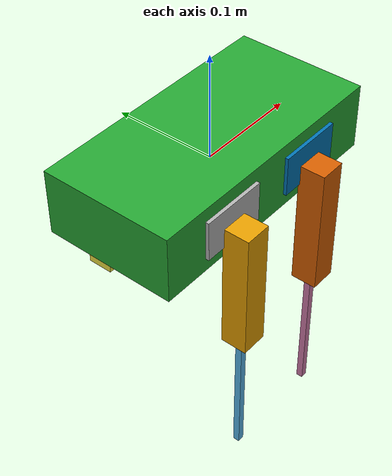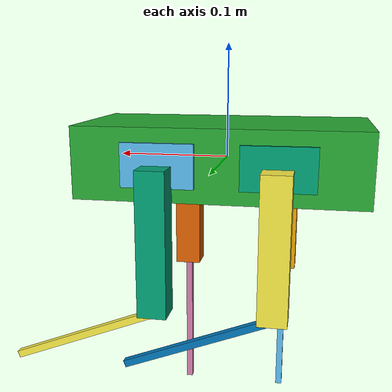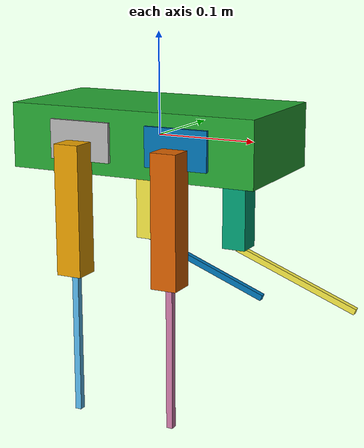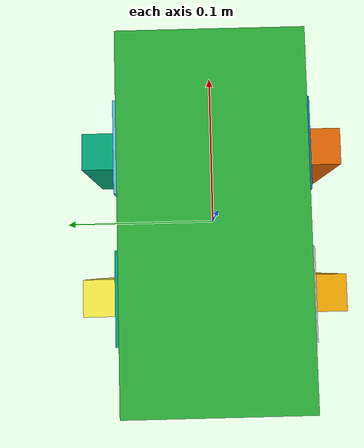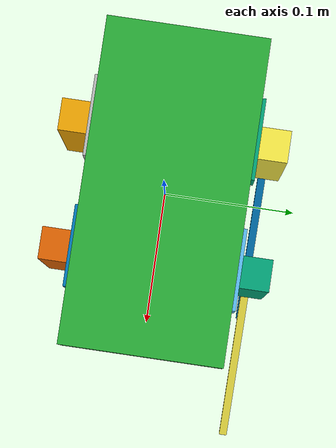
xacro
<?xml version="1.0" ?>
<!-- |    This document was autogenerated by xacro from /home/samee/ros2_ws/src/servo_controller/urdf/fixed_urdf2.urdf | -->
<!-- |    EDITING THIS FILE BY HAND IS NOT RECOMMENDED                                 | -->
<robot xmlns:xacro="http://www.ros.org/wiki/xacro"  name="robot">

  <!-- Gazebo plugin for ros2_control -->
  <gazebo>
    <plugin name="gazebo_ros2_control" filename="libgazebo_ros2_control.so">
      <parameters>$(find servo_controller)/config/robot_controllers.yaml</parameters>
      <robotNamespace>/</robotNamespace>
    </plugin>
  </gazebo>

  <link name="base_link">
    <visual>
      <geometry>
        <box size="0.254 0.127 0.0635"/>
      </geometry>
    </visual>
    <collision>
      <geometry>
        <box size="0.254 0.127 0.0635"/>
      </geometry>
    </collision>
    <inertial>
      <origin rpy="0.000 0.000 0.000" xyz="0.000 0.000 0.000"/>
      <mass value="2.000"/>
      <inertia ixx="0.03562" ixy="0.00000" ixz="0.00000" iyy="0.04262" iyz="0.00000" izz="0.04508"/>
    </inertial>
  </link>

  <!-- FL -->
  <joint name="hip_fl" type="revolute">
    <limit effort="100" lower="-0.2" upper="0.4" velocity="10"/>
    <origin rpy="0 0 0" xyz="0.0508 0.0508 0"/>
    <parent link="base_link"/>
    <child link="hipbone_fl"/>
    <!-- ros2_control Transmission -->
    <transmission>
      <type>transmission_interface/SimpleTransmission</type>
      <joint name="hip_fl">
        <hardwareInterface>hardware_interface/PositionJointInterface</hardwareInterface>
      </joint>
      <actuator name="hip_fl_motor">
        <hardwareInterface>hardware_interface/PositionJointInterface</hardwareInterface>
        <mechanicalReduction>1</mechanicalReduction>
      </actuator>
    </transmission>
  </joint>

  <link name="hipbone_fl">
    <visual>
      <origin rpy="0 0 0" xyz=" 0.0 0.0 0"/>
      <geometry>
        <box size="0.0635 0.03175 0.0381"/>
      </geometry>
    </visual>
    <collision>
      <origin rpy="0 0 0" xyz=" 0.0 0.0 0"/>
      <geometry>
        <box size="0.0635 0.03175 0.0381"/>
      </geometry>
    </collision>
    <inertial>
      <origin rpy="0.000 0.000 0.000" xyz="0.000 0.000 0.000"/>
      <mass value="0.233"/>
      <inertia ixx="0.00216" ixy="-0.00001" ixz="0.00001" iyy="0.00216" iyz="0.00001" izz="0.00211"/>
    </inertial>
  </link>

  <joint name="shoulder_fl" type="revolute">
    <limit effort="100" lower="-0.1" upper="0.5" velocity="10"/>
    <origin rpy="0 0 0" xyz="0 0 0"/>
    <axis xyz="0 1 0"/>
    <parent link="hipbone_fl"/>
    <child link="femur_fl"/>
    <!-- ros2_control Transmission -->
    <transmission>
      <type>transmission_interface/SimpleTransmission</type>
      <joint name="shoulder_fl">
        <hardwareInterface>hardware_interface/PositionJointInterface</hardwareInterface>
      </joint>
      <actuator name="shoulder_fl_motor">
        <hardwareInterface>hardware_interface/PositionJointInterface</hardwareInterface>
        <mechanicalReduction>1</mechanicalReduction>
      </actuator>
    </transmission>
  </joint>

  <link name="femur_fl">
    <visual>
      <origin rpy="0 0 0" xyz="0.0 0.027 -0.0635"/>
      <geometry>
        <box size="0.0254 0.0254 0.127"/>
      </geometry>
    </visual>
    <collision>
      <origin rpy="0 0 0" xyz="0.0 0.027 -0.0635"/>
      <geometry>
        <box size="0.0254 0.0254 0.127"/>
      </geometry>
    </collision>
    <inertial>
      <origin rpy="0.000 0.000 0.000" xyz="0.000 0.000 0.000"/>
      <mass value="0.084"/>
      <inertia ixx="0.00414" ixy="0.00000" ixz="0.00000" iyy="0.00410" iyz="0.00006" izz="0.00386"/>
    </inertial>
  </link>

  <joint name="knee_fl" type="revolute">
    <limit effort="100" lower="-2" upper="-0.4" velocity="10"/>
    <origin rpy="0 0 1.57" xyz="0 0 -0.127"/>
    <parent link="femur_fl"/>
    <child link="tibia_fl"/>
    <!-- ros2_control Transmission -->
    <transmission>
      <type>transmission_interface/SimpleTransmission</type>
      <joint name="knee_fl">
        <hardwareInterface>hardware_interface/PositionJointInterface</hardwareInterface>
      </joint>
      <actuator name="knee_fl_motor">
        <hardwareInterface>hardware_interface/PositionJointInterface</hardwareInterface>
        <mechanicalReduction>1</mechanicalReduction>
      </actuator>
    </transmission>
  </joint>

  <link name="tibia_fl">
    <visual>
      <origin rpy="0 0 0" xyz="0.0254 0.0 -0.06985"/>
      <geometry>
        <box size="0.00635 0.00635 0.1397"/>
      </geometry>
    </visual>
    <collision>
      <origin rpy="0 0 0" xyz="0.0254 0.0 -0.06985"/>
      <geometry>
        <box size="0.00635 0.00635 0.1397"/>
      </geometry>
    </collision>
    <inertial>
      <origin rpy="0.000 0.000 0.000" xyz="0.000 0.000 0.000"/>
      <mass value="0.034"/>
      <inertia ixx="0.00159" ixy="0.00000" ixz="-0.00001" iyy="0.00159" iyz="0.00000" izz="0.00147"/>
    </inertial>
  </link>

  <!-- FR -->
  <joint name="hip_fr" type="revolute">
    <limit effort="100" lower="-0.2" upper="0.4" velocity="10"/>
    <origin rpy="0 0 3.14" xyz="0.0508 -0.0508 0"/>
    <parent link="base_link"/>
    <child link="hipbone_fr"/>
    <!-- ros2_control Transmission -->
    <transmission>
      <type>transmission_interface/SimpleTransmission</type>
      <joint name="hip_fr">
        <hardwareInterface>hardware_interface/PositionJointInterface</hardwareInterface>
      </joint>
      <actuator name="hip_fr_motor">
        <hardwareInterface>hardware_interface/PositionJointInterface</hardwareInterface>
        <mechanicalReduction>1</mechanicalReduction>
      </actuator>
    </transmission>
  </joint>

  <link name="hipbone_fr">
    <visual>
      <origin rpy="0 0 0" xyz=" 0.0 0.0 0"/>
      <geometry>
        <box size="0.0635 0.03175 0.0381"/>
      </geometry>
    </visual>
    <collision>
      <origin rpy="0 0 0" xyz=" 0.0 0.0 0"/>
      <geometry>
        <box size="0.0635 0.03175 0.0381"/>
      </geometry>
    </collision>
    <inertial>
      <origin rpy="0.000 0.000 0.000" xyz="0.000 0.000 0.000"/>
      <mass value="0.233"/>
      <inertia ixx="0.00216" ixy="0.00001" ixz="0.00001" iyy="0.00216" iyz="-0.00001" izz="0.00211"/>
    </inertial>
  </link>

  <joint name="shoulder_fr" type="revolute">
    <limit effort="100" lower="-0.5" upper="0.1" velocity="10"/>
    <origin rpy="0 0 0" xyz="0 0 0"/>
    <axis xyz="0 1 0"/>
    <parent link="hipbone_fr"/>
    <child link="femur_fr"/>
    <!-- ros2_control Transmission -->
    <transmission>
      <type>transmission_interface/SimpleTransmission</type>
      <joint name="shoulder_fr">
        <hardwareInterface>hardware_interface/PositionJointInterface</hardwareInterface>
      </joint>
      <actuator name="shoulder_fr_motor">
        <hardwareInterface>hardware_interface/PositionJointInterface</hardwareInterface>
        <mechanicalReduction>1</mechanicalReduction>
      </actuator>
    </transmission>
  </joint>

  <link name="femur_fr">
    <visual>
      <origin rpy="0 0 0" xyz="0.0 0.027 -0.0635"/>
      <geometry>
        <box size="0.0254 0.0254 0.127"/>
      </geometry>
    </visual>
    <collision>
      <origin rpy="0 0 0" xyz="0.0 0.027 -0.0635"/>
      <geometry>
        <box size="0.0254 0.0254 0.127"/>
      </geometry>
    </collision>
    <inertial>
      <origin rpy="0.000 0.000 0.000" xyz="0.000 0.000 0.000"/>
      <mass value="0.084"/>
      <inertia ixx="0.00414" ixy="0.00000" ixz="0.00000" iyy="0.00410" iyz="-0.00006" izz="0.00386"/>
    </inertial>
  </link>

  <joint name="knee_fr" type="revolute">
    <limit effort="100" lower="-0.5" upper="2" velocity="10"/>
    <origin rpy="0 0 1.57" xyz="0 0 -0.127"/>
    <parent link="femur_fr"/>
    <child link="tibia_fr"/>
    <!-- ros2_control Transmission -->
    <transmission>
      <type>transmission_interface/SimpleTransmission</type>
      <joint name="knee_fr">
        <hardwareInterface>hardware_interface/PositionJointInterface</hardwareInterface>
      </joint>
      <actuator name="knee_fr_motor">
        <hardwareInterface>hardware_interface/PositionJointInterface</hardwareInterface>
        <mechanicalReduction>1</mechanicalReduction>
      </actuator>
    </transmission>
  </joint>

  <link name="tibia_fr">
    <visual>
      <origin rpy="0 0 0" xyz="0.0254 0.0 -0.06985"/>
      <geometry>
        <box size="0.00635 0.00635 0.1397"/>
      </geometry>
    </visual>
    <collision>
      <origin rpy="0 0 0" xyz="0.0254 0.0 -0.06985"/>
      <geometry>
        <box size="0.00635 0.00635 0.1397"/>
      </geometry>
    </collision>
    <inertial>
      <origin rpy="0.000 0.000 0.000" xyz="0.000 0.000 0.000"/>
      <mass value="0.034"/>
      <inertia ixx="0.00159" ixy="0.00000" ixz="-0.00001" iyy="0.00159" iyz="0.00000" izz="0.00147"/>
    </inertial>
  </link>

  <!-- BR -->
  <joint name="hip_br" type="revolute">
    <limit effort="100" lower="-0.2" upper="0.4" velocity="10"/>
    <origin rpy="0 0 3.14" xyz="-0.0508 -0.0508 0"/>
    <parent link="base_link"/>
    <child link="hipbone_br"/>
    <!-- ros2_control Transmission -->
    <transmission>
      <type>transmission_interface/SimpleTransmission</type>
      <joint name="hip_br">
        <hardwareInterface>hardware_interface/PositionJointInterface</hardwareInterface>
      </joint>
      <actuator name="hip_br_motor">
        <hardwareInterface>hardware_interface/PositionJointInterface</hardwareInterface>
        <mechanicalReduction>1</mechanicalReduction>
      </actuator>
    </transmission>
  </joint>

  <link name="hipbone_br">
    <visual>
      <origin rpy="0 0 0" xyz=" 0.0 0.0 0"/>
      <geometry>
        <box size="0.0635 0.03175 0.0381"/>
      </geometry>
    </visual>
    <collision>
      <origin rpy="0 0 0" xyz=" 0.0 0.0 0"/>
      <geometry>
        <box size="0.0635 0.03175 0.0381"/>
      </geometry>
    </collision>
    <inertial>
      <origin rpy="0.000 0.000 0.000" xyz="0.000 0.000 0.000"/>
      <mass value="0.233"/>
      <inertia ixx="0.00216" ixy="-0.00001" ixz="-0.00001" iyy="0.00216" iyz="-0.00001" izz="0.00211"/>
    </inertial>
  </link>

  <joint name="shoulder_br" type="revolute">
    <limit effort="100" lower="-0.5" upper="0.1" velocity="10"/>
    <origin rpy="0 0 0" xyz="0 0 0"/>
    <axis xyz="0 1 0"/>
    <parent link="hipbone_br"/>
    <child link="femur_br"/>
    <!-- ros2_control Transmission -->
    <transmission>
      <type>transmission_interface/SimpleTransmission</type>
      <joint name="shoulder_br">
        <hardwareInterface>hardware_interface/PositionJointInterface</hardwareInterface>
      </joint>
      <actuator name="shoulder_br_motor">
        <hardwareInterface>hardware_interface/PositionJointInterface</hardwareInterface>
        <mechanicalReduction>1</mechanicalReduction>
      </actuator>
    </transmission>
  </joint>

  <link name="femur_br">
    <visual>
      <origin rpy="0 0 0" xyz="0.0 0.027 -0.0635"/>
      <geometry>
        <box size="0.0254 0.0254 0.127"/>
      </geometry>
    </visual>
    <collision>
      <origin rpy="0 0 0" xyz="0.0 0.027 -0.0635"/>
      <geometry>
        <box size="0.0254 0.0254 0.127"/>
      </geometry>
    </collision>
    <inertial>
      <origin rpy="0.000 0.000 0.000" xyz="0.000 0.000 0.000"/>
      <mass value="0.084"/>
      <inertia ixx="0.00414" ixy="0.00000" ixz="0.00000" iyy="0.00410" iyz="-0.00006" izz="0.00386"/>
    </inertial>
  </link>

  <joint name="knee_br" type="revolute">
    <limit effort="100" lower="-0.5" upper="2" velocity="10"/>
    <origin rpy="0 0 1.57" xyz="0 0 -0.127"/>
    <parent link="femur_br"/>
    <child link="tibia_br"/>
    <!-- ros2_control Transmission -->
    <transmission>
      <type>transmission_interface/SimpleTransmission</type>
      <joint name="knee_br">
        <hardwareInterface>hardware_interface/PositionJointInterface</hardwareInterface>
      </joint>
      <actuator name="knee_br_motor">
        <hardwareInterface>hardware_interface/PositionJointInterface</hardwareInterface>
        <mechanicalReduction>1</mechanicalReduction>
      </actuator>
    </transmission>
  </joint>

  <link name="tibia_br">
    <visual>
      <origin rpy="0 0 0" xyz="0.0254 0.0 -0.06985"/>
      <geometry>
        <box size="0.00635 0.00635 0.1397"/>
      </geometry>
    </visual>
    <collision>
      <origin rpy="0 0 0" xyz="0.0254 0.0 -0.06985"/>
      <geometry>
        <box size="0.00635 0.00635 0.1397"/>
      </geometry>
    </collision>
    <inertial>
      <origin rpy="0.000 0.000 0.000" xyz="0.000 0.000 0.000"/>
      <mass value="0.034"/>
      <inertia ixx="0.00159" ixy="0.00000" ixz="-0.00001" iyy="0.00159" iyz="0.00000" izz="0.00147"/>
    </inertial>
  </link>

  <!-- BL -->
  <joint name="hip_bl" type="revolute">
    <limit effort="100" lower="-0.2" upper="0.4" velocity="10"/>
    <origin rpy="0 0 0" xyz="-0.0508 0.0508 0"/>
    <parent link="base_link"/>
    <child link="hipbone_bl"/>
    <!-- ros2_control Transmission -->
    <transmission>
      <type>transmission_interface/SimpleTransmission</type>
      <joint name="hip_bl">
        <hardwareInterface>hardware_interface/PositionJointInterface</hardwareInterface>
      </joint>
      <actuator name="hip_bl_motor">
        <hardwareInterface>hardware_interface/PositionJointInterface</hardwareInterface>
        <mechanicalReduction>1</mechanicalReduction>
      </actuator>
    </transmission>
  </joint>

  <link name="hipbone_bl">
    <visual>
      <origin rpy="0 0 0" xyz=" 0.0 0.0 0"/>
      <geometry>
        <box size="0.0635 0.03175 0.0381"/>
      </geometry>
    </visual>
    <collision>
      <origin rpy="0 0 0" xyz=" 0.0 0.0 0"/>
      <geometry>
        <box size="0.0635 0.03175 0.0381"/>
      </geometry>
    </collision>
    <inertial>
      <origin rpy="0.000 0.000 0.000" xyz="0.000 0.000 0.000"/>
      <mass value="0.233"/>
      <inertia ixx="0.00216" ixy="0.00001" ixz="-0.00001" iyy="0.00216" iyz="0.00001" izz="0.00211"/>
    </inertial>
  </link>

  <joint name="shoulder_bl" type="revolute">
    <limit effort="100" lower="-0.1" upper="0.5" velocity="10"/>
    <origin rpy="0 0 0" xyz="0 0 0"/>
    <axis xyz="0 1 0"/>
    <parent link="hipbone_bl"/>
    <child link="femur_bl"/>
    <!-- ros2_control Transmission -->
    <transmission>
      <type>transmission_interface/SimpleTransmission</type>
      <joint name="shoulder_bl">
        <hardwareInterface>hardware_interface/PositionJointInterface</hardwareInterface>
      </joint>
      <actuator name="shoulder_bl_motor">
        <hardwareInterface>hardware_interface/PositionJointInterface</hardwareInterface>
        <mechanicalReduction>1</mechanicalReduction>
      </actuator>
    </transmission>
  </joint>

  <link name="femur_bl">
    <visual>
      <origin rpy="0 0 0" xyz="0.0 0.027 -0.0635"/>
      <geometry>
        <box size="0.0254 0.0254 0.127"/>
      </geometry>
    </visual>
    <collision>
      <origin rpy="0 0 0" xyz="0.0 0.027 -0.0635"/>
      <geometry>
        <box size="0.0254 0.0254 0.127"/>
      </geometry>
    </collision>
    <inertial>
      <origin rpy="0.000 0.000 0.000" xyz="0.000 0.000 0.000"/>
      <mass value="0.084"/>
      <inertia ixx="0.00414" ixy="0.00000" ixz="0.00000" iyy="0.00410" iyz="0.00006" izz="0.00386"/>
    </inertial>
  </link>

  <joint name="knee_bl" type="revolute">
    <limit effort="100" lower="-2" upper="-0.4" velocity="10"/>
    <origin rpy="0 0 1.57" xyz="0 0 -0.127"/>
    <parent link="femur_bl"/>
    <child link="tibia_bl"/>
    <!-- ros2_control Transmission -->
    <transmission>
      <type>transmission_interface/SimpleTransmission</type>
      <joint name="knee_bl">
        <hardwareInterface>hardware_interface/PositionJointInterface</hardwareInterface>
      </joint>
      <actuator name="knee_bl_motor">
        <hardwareInterface>hardware_interface/PositionJointInterface</hardwareInterface>
        <mechanicalReduction>1</mechanicalReduction>
      </actuator>
    </transmission>
  </joint>

  <link name="tibia_bl">
    <visual>
      <origin rpy="0 0 0" xyz="0.0254 0.0 -0.06985"/>
      <geometry>
        <box size="0.00635 0.00635 0.1397"/>
      </geometry>
    </visual>
    <collision>
      <origin rpy="0 0 0" xyz="0.0254 0.0 -0.06985"/>
      <geometry>
        <box size="0.00635 0.00635 0.1397"/>
      </geometry>
    </collision>
    <inertial>
      <origin rpy="0.000 0.000 0.000" xyz="0.000 0.000 0.000"/>
      <mass value="0.034"/>
      <inertia ixx="0.00159" ixy="0.00000" ixz="-0.00001" iyy="0.00159" iyz="0.00000" izz="0.00147"/>
    </inertial>
  </link>

  <xacro:include filename="example_gazebo.xacro" />

</robot>
